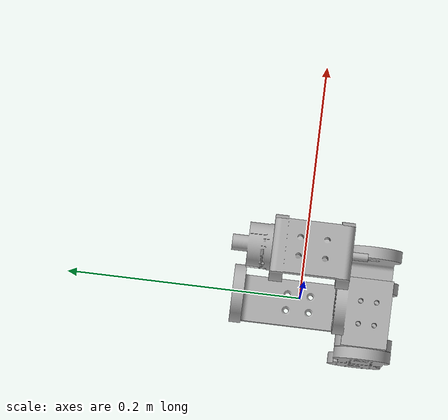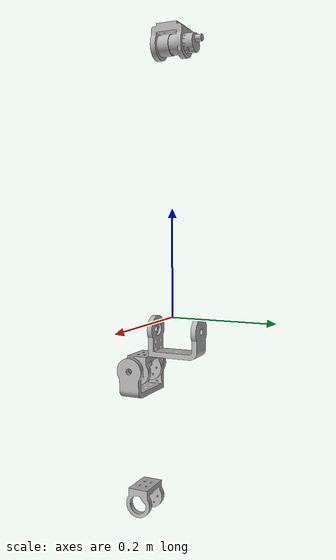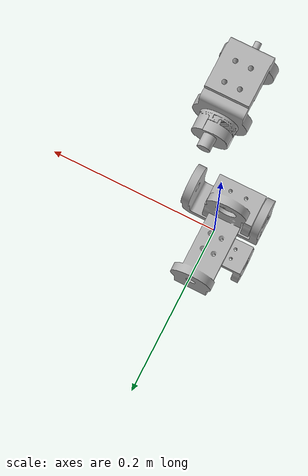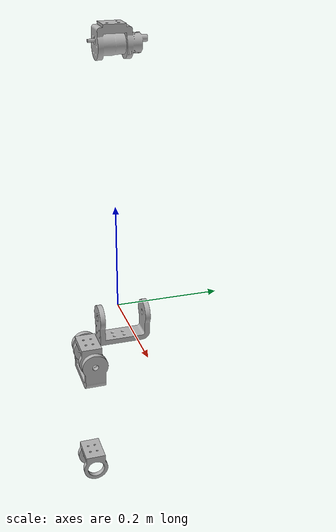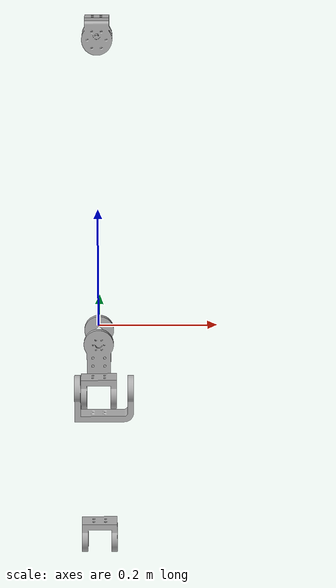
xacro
<?xml version="1.0" ?>
<robot name="test" xmlns:xacro="http://www.ros.org/wiki/xacro">

<xacro:include filename="$(find test_description)/urdf/materials.xacro" />
<xacro:include filename="$(find test_description)/urdf/test.trans" />
<xacro:include filename="$(find test_description)/urdf/test.gazebo" />
<link name="base_link">
  <inertial>
    <origin rpy="0 0 0" xyz="-2.7174602321866267e-05 0.006053798965408933 -0.028185037843435335"/>
    <mass value="0.512530898807761"/>
    <inertia ixx="0.000232" ixy="0.0" ixz="0.0" iyy="0.000107" iyz="6e-06" izz="0.000214"/>
  </inertial>
  <visual>
    <origin rpy="0 0 0" xyz="0 0 0"/>
    <geometry>
      <mesh filename="package://test_description/meshes/base_link.stl" scale="0.001 0.001 0.001"/>
    </geometry>
    <material name="silver_default"/>
  </visual>
  <collision>
    <origin rpy="0 0 0" xyz="0 0 0"/>
    <geometry>
      <mesh filename="package://test_description/meshes/base_link.stl" scale="0.001 0.001 0.001"/>
    </geometry>
  </collision>
</link>

<link name="link1_1">
  <inertial>
    <origin rpy="0 0 0" xyz="-0.0014458364573385798 0.013511068370211994 -0.04088435425246737"/>
    <mass value="0.14361766122148795"/>
    <inertia ixx="0.000433" ixy="-9e-06" ixz="-8e-06" iyy="0.000166" iyz="-0.000109" izz="0.000345"/>
  </inertial>
  <visual>
    <origin rpy="0 0 0" xyz="0.0 0.03 0.023"/>
    <geometry>
      <mesh filename="package://test_description/meshes/link1_1.stl" scale="0.001 0.001 0.001"/>
    </geometry>
    <material name="silver_default"/>
  </visual>
  <collision>
    <origin rpy="0 0 0" xyz="0.0 0.03 0.023"/>
    <geometry>
      <mesh filename="package://test_description/meshes/link1_1.stl" scale="0.001 0.001 0.001"/>
    </geometry>
  </collision>
</link>

<link name="link2_1">
  <inertial>
    <origin rpy="0 0 0" xyz="0.028563073270656766 -0.008699999999984845 -0.13645942195306046"/>
    <mass value="0.48213537903441234"/>
    <inertia ixx="0.004062" ixy="0.0" ixz="-0.000245" iyy="0.004308" iyz="-0.0" izz="0.000408"/>
  </inertial>
  <visual>
    <origin rpy="0 0 0" xyz="0.03 0.0521 0.169"/>
    <geometry>
      <mesh filename="package://test_description/meshes/link2_1.stl" scale="0.001 0.001 0.001"/>
    </geometry>
    <material name="silver_default"/>
  </visual>
  <collision>
    <origin rpy="0 0 0" xyz="0.03 0.0521 0.169"/>
    <geometry>
      <mesh filename="package://test_description/meshes/link2_1.stl" scale="0.001 0.001 0.001"/>
    </geometry>
  </collision>
</link>

<joint name="joint1" type="continuous">
  <origin rpy="0 0 0" xyz="0.0 -0.03 -0.023"/>
  <parent link="base_link"/>
  <child link="link1_1"/>
  <axis xyz="0.0 1.0 0.0"/>
</joint>

<joint name="Rev6" type="continuous">
  <origin rpy="0 0 0" xyz="-0.03 -0.0221 -0.146"/>
  <parent link="link1_1"/>
  <child link="link2_1"/>
  <axis xyz="1.0 0.0 0.0"/>
</joint>

</robot>

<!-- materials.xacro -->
<robot name="test" xmlns:xacro="http://www.ros.org/wiki/xacro" >

<material name="silver_default">
  <color rgba="0.700 0.700 0.700 1.000"/>
</material>

</robot>

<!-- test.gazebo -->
<robot name="test" xmlns:xacro="http://www.ros.org/wiki/xacro" >

<xacro:property name="body_color" value="Gazebo/Silver" />

<gazebo>
  <plugin filename="libgazebo_ros_control.so" name="control"/>
</gazebo>
<gazebo reference="base_link">
  <material>${body_color}</material>
  <mu1>0.2</mu1>
  <mu2>0.2</mu2>
  <selfCollide>true</selfCollide>
  <gravity>true</gravity>
</gazebo>

<gazebo reference="link1_1">
  <material>${body_color}</material>
  <mu1>0.2</mu1>
  <mu2>0.2</mu2>
  <selfCollide>true</selfCollide>
</gazebo>

</robot>
